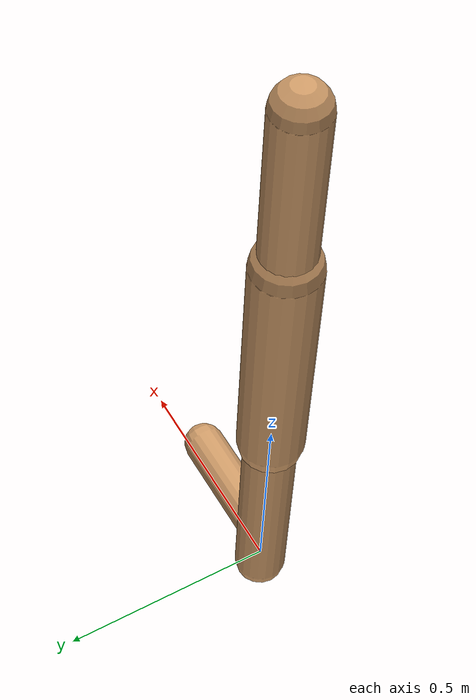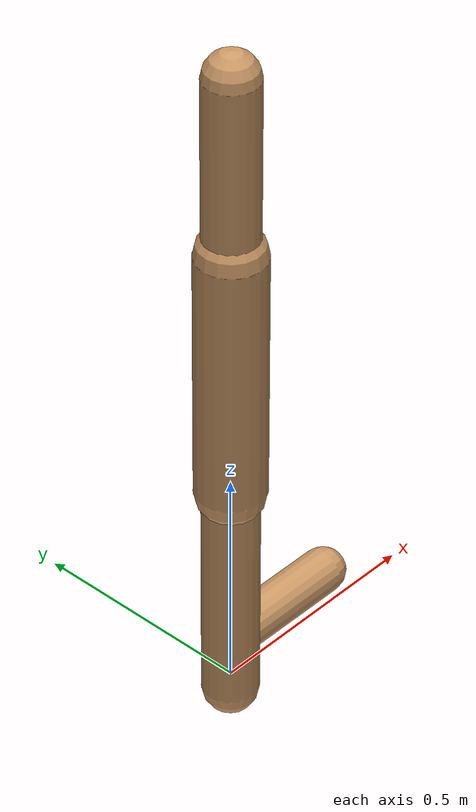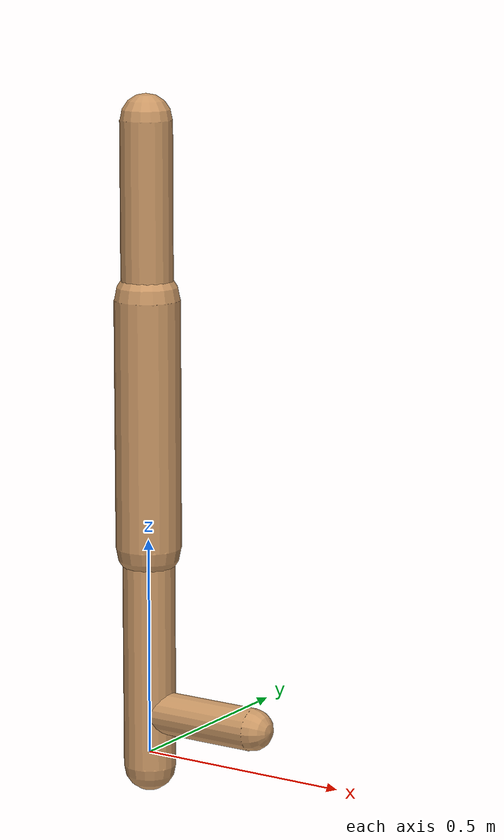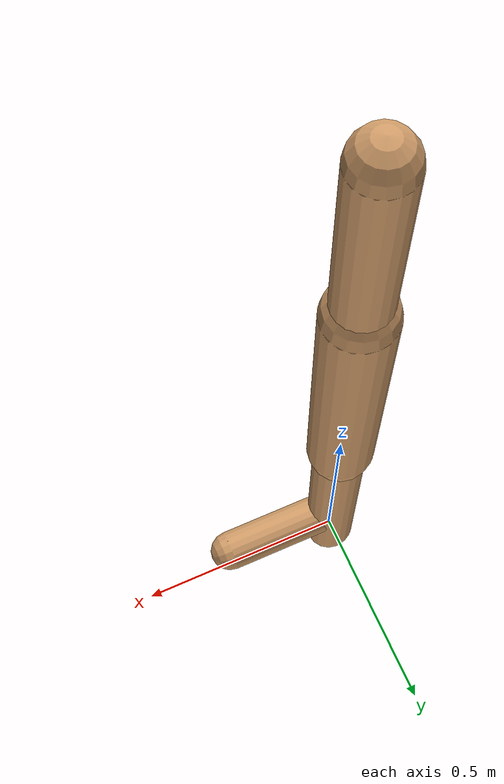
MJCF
<mujoco model="walker2d">
  <compiler angle="degree" coordinate="global" inertiafromgeom="true" />
  <default>
    <joint armature="0.01" damping=".1" limited="true" />
    <geom conaffinity="0" condim="3" contype="1" density="1000" friction="0.8 .1 .1" rgba="0.8 0.6 .4 1" />
  </default>
  <option integrator="RK4" timestep="0.002" />
  <worldbody>

    <body name="torso" pos="0 0 0.24682108092587143">
      <joint armature="0" axis="1 0 0" damping="0" limited="false" name="ignorex" pos="0 0 0" stiffness="0" type="slide" />
      <joint armature="0" axis="0 0 1" damping="0" limited="false" name="ignorez" pos="0 0 0" ref="1.25" stiffness="0" type="slide" />
      <joint armature="0" axis="0 1 0" damping="0" limited="false" name="ignorey" pos="0 0 0" stiffness="0" type="hinge" />
      <geom fromto="0 0 1.45 0 0 1.05" name="torso_geom" size="0.058819412807585014" type="capsule" />
      <body name="thigh">
        <joint axis="0 -1 0" name="thigh_joint" pos="0 0 1.05" range="-150 0" type="hinge" />
        <geom fromto="0.0 0.0 1.05 0.0 0.0 0.48308475114037663" name="thigh_geom" size="0.07463850948446582" type="capsule" />
        <body name="leg" pos="0.0 0.0 -0.11691524885962334">
          <joint axis="0 -1 0" name="leg_joint" pos="0 0 0.6" range="-150 0" type="hinge" />
          <geom fromto="0.0 0.0 0.6 0.0 0.0 -0.02990583206624811" name="leg_geom" size="0.059710807587572655" type="capsule" />
          <body name="foot" pos="0.0 0.0 -0.12990583206624812">
            <joint axis="0 -1 0" name="foot_joint" pos="0 0 0.1" range="-45 45" type="hinge" />
            <geom fromto="-0.0 0.0 0.09999999999999998 0.2786766511339888 0.0 0.09999999999999998" name="foot_geom" size="0.04829599996464743" type="capsule" />
          </body>
        </body>
      </body>

      <body name="thigh_left">
        <joint axis="0 -1 0" name="thigh_left_joint" pos="0 0 1.05" range="-150 0" type="hinge" />
        <geom fromto="0.0 0.0 1.05 0.0 0.0 0.48308475114037663" name="thigh_left_geom" rgba=".7 .3 .6 1" size="0.07463850948446582" type="capsule" />
        <body name="leg_left" pos="0.0 0.0 -0.11691524885962334">
          <joint axis="0 -1 0" name="leg_left_joint" pos="0 0 0.6" range="-150 0" type="hinge" />
          <geom fromto="0.0 0.0 0.6 0.0 0.0 -0.02990583206624811" name="leg_left_geom" rgba=".7 .3 .6 1" size="0.059710807587572655" type="capsule" />
          <body name="foot_left" pos="0.0 0.0 -0.12990583206624812">
            <joint axis="0 -1 0" name="foot_left_joint" pos="0 0 0.1" range="-45 45" type="hinge" />
            <geom fromto="-0.0 0.0 0.09999999999999998 0.2786766511339888 0.0 0.09999999999999998" name="foot_left_geom" rgba=".7 .3 .6 1" size="0.04829599996464743" type="capsule" />
          </body>
        </body>
      </body>
    </body>
  </worldbody>
  <actuator>

    <motor ctrllimited="true" ctrlrange="-1.0 1.0" gear="100" joint="thigh_joint" />
    <motor ctrllimited="true" ctrlrange="-1.0 1.0" gear="100" joint="leg_joint" />
    <motor ctrllimited="true" ctrlrange="-1.0 1.0" gear="100" joint="foot_joint" />
    <motor ctrllimited="true" ctrlrange="-1.0 1.0" gear="100" joint="thigh_left_joint" />
    <motor ctrllimited="true" ctrlrange="-1.0 1.0" gear="100" joint="leg_left_joint" />
    <motor ctrllimited="true" ctrlrange="-1.0 1.0" gear="100" joint="foot_left_joint" />

  </actuator>
</mujoco>
